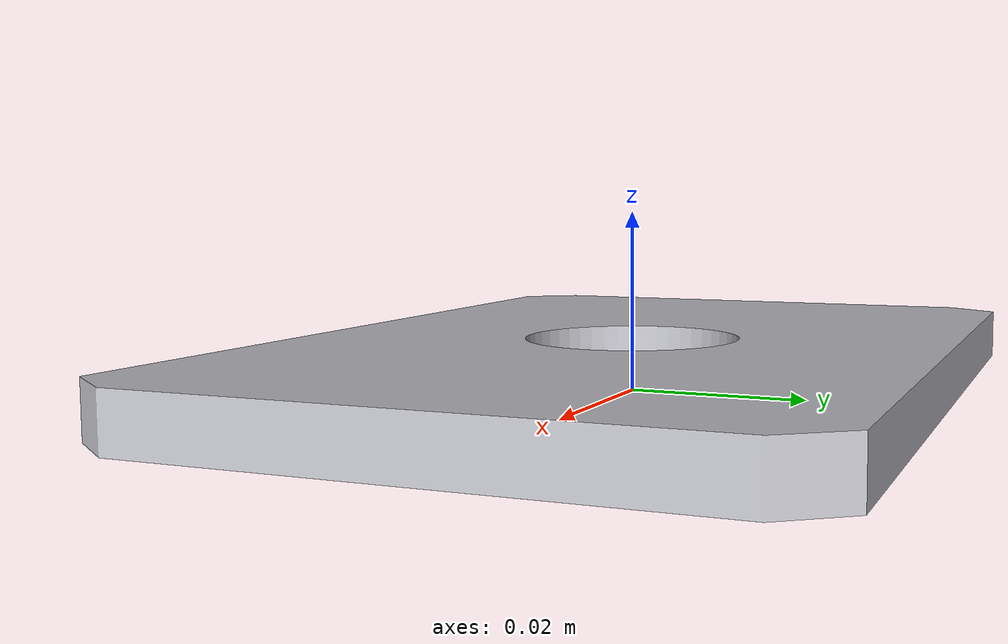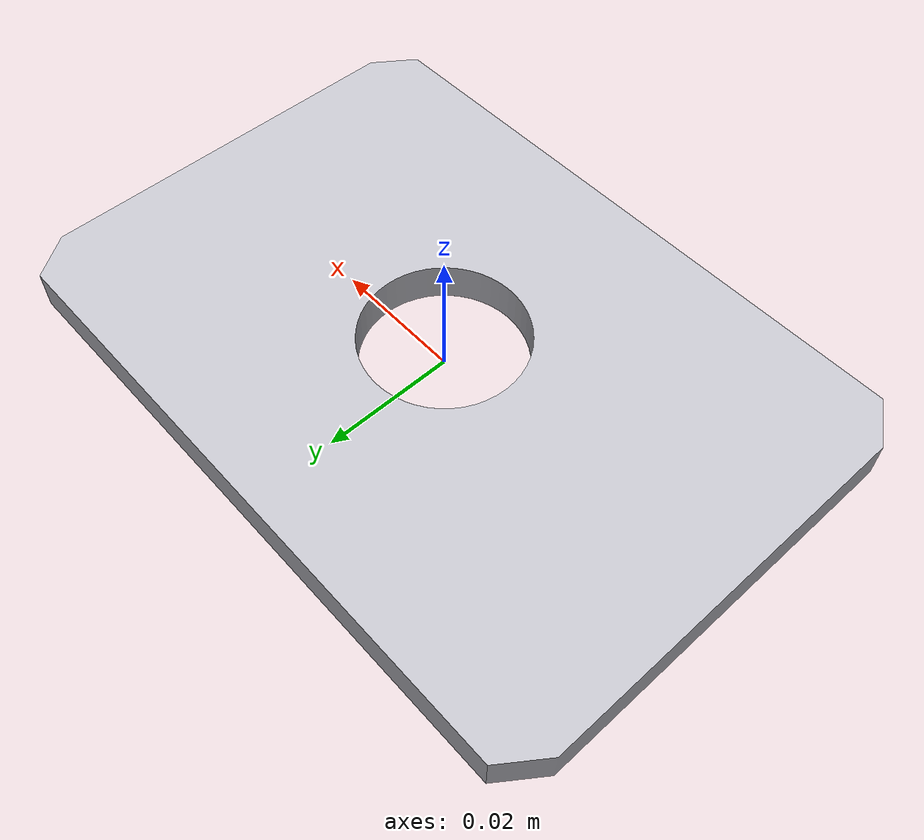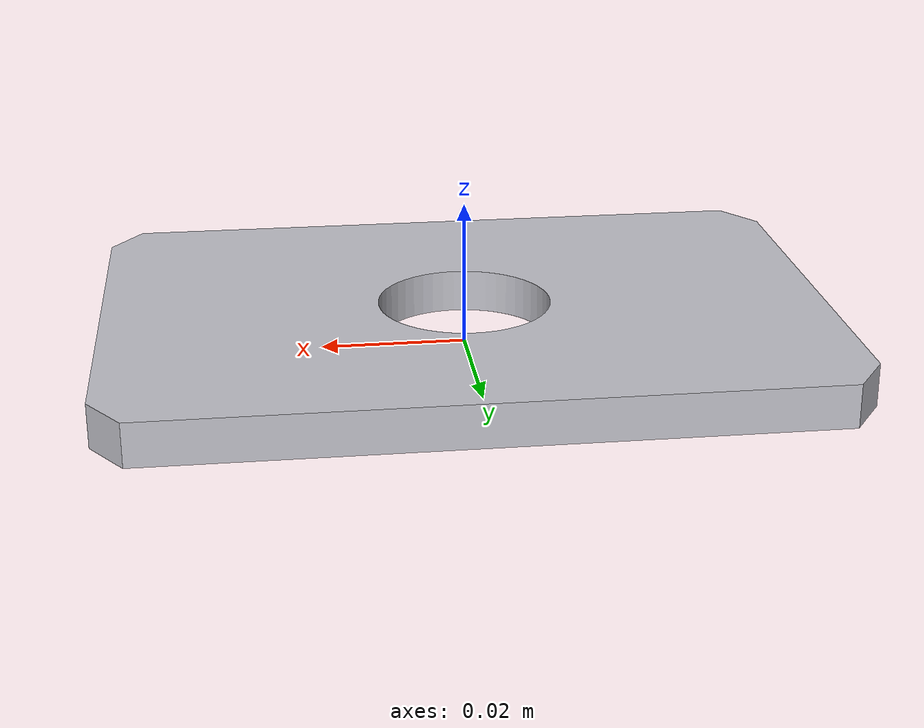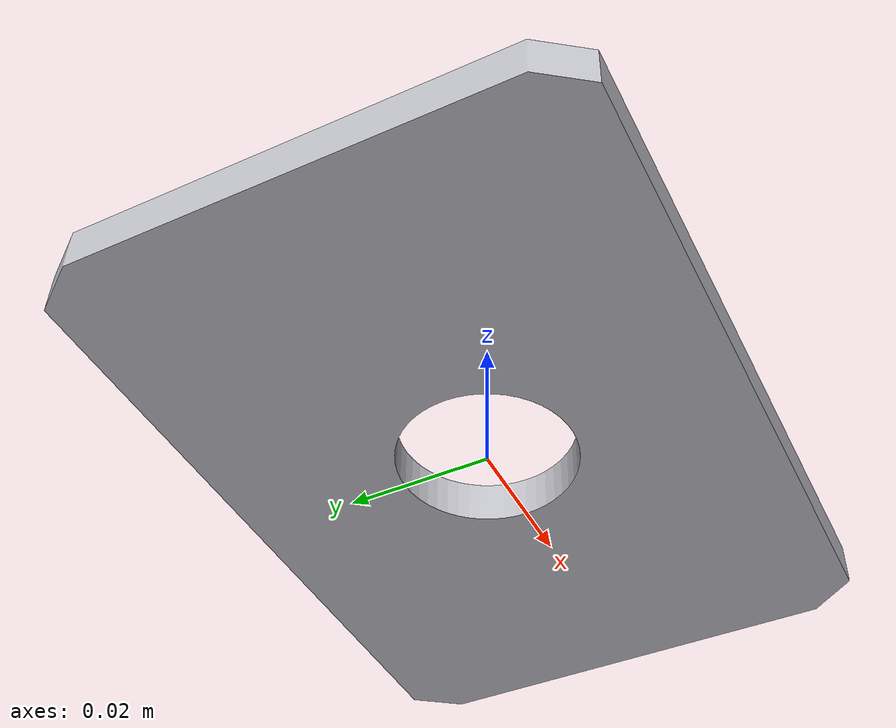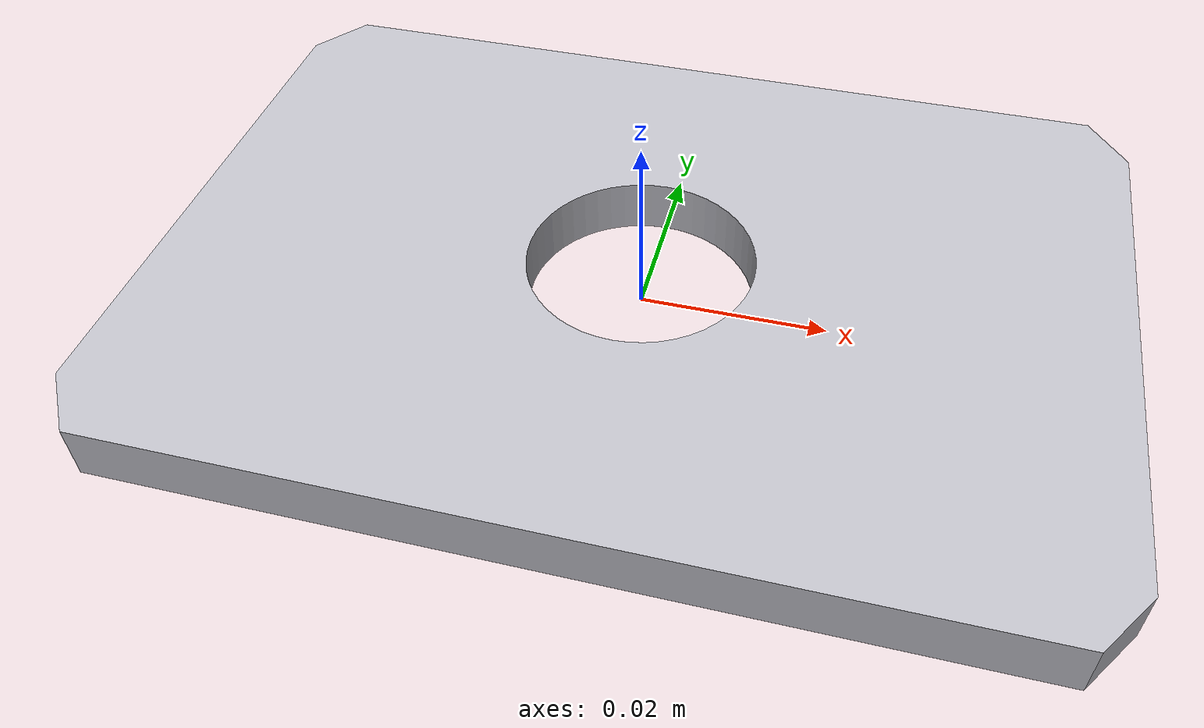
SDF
<?xml version="1.0"?>
<!--
  Base plate with a hole: 100 x 70 x 6 mm, hole radius 12 mm (mesh made by
  meshes/generate_plate_with_hole.py). Static. Origin at the bottom face centre.
-->
<sdf version="1.9">
  <model name="base_plate">
    <!-- Ground-truth label for the segmentation camera. Unique per object type. -->
    <plugin filename="gz-sim-label-system" name="gz::sim::systems::Label">
      <label>4</label>
    </plugin>
    <static>true</static>
    <link name="base_plate_link">
      <inertial>
        <pose>0 0 0.003 0 0 0</pose>
        <mass>0.05</mass>
        <inertia>
          <ixx>5e-6</ixx>
          <iyy>5e-6</iyy>
          <izz>1e-5</izz>
          <ixy>0</ixy>
          <ixz>0</ixz>
          <iyz>0</iyz>
        </inertia>
      </inertial>

      <visual name="visual">
        <geometry>
          <mesh><uri>package://so101_description/meshes/base_plate_with_hole.stl</uri></mesh>
        </geometry>
        <material>
          <ambient>0.75 0.75 0.78 1.0</ambient>
          <diffuse>0.75 0.75 0.78 1.0</diffuse>
          <specular>0.7 0.7 0.7 1.0</specular>
        </material>
      </visual>
      <collision name="collision">
        <geometry>
          <mesh><uri>package://so101_description/meshes/base_plate_with_hole.stl</uri></mesh>
        </geometry>
      </collision>
    </link>
  </model>
</sdf>
